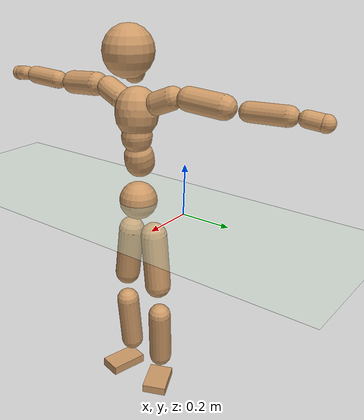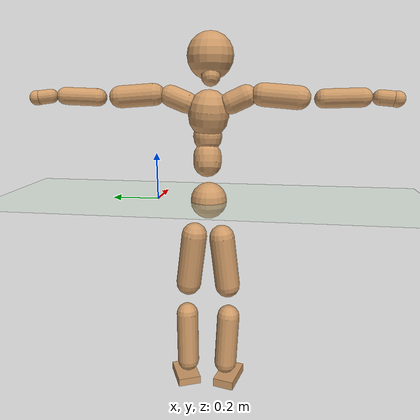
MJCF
<mujoco model="humanoid">
  <compiler coordinate="local" angle="radian"/>
  <default>
    <joint damping="0.0" armature="0.01" stiffness="0.0" limited="true"/>
    <geom conaffinity="1" condim="3" contype="7" margin="0.001" rgba="0.8 0.6 .4 1"/>
  </default>
  <asset>
    <texture type="skybox" builtin="gradient" rgb1=".4 .5 .6" rgb2="0 0 0" width="100" height="100"/>
    <texture builtin="flat" height="1278" mark="cross" markrgb="1 1 1" name="texgeom" random="0.01" rgb1="0.8 0.6 0.4" rgb2="0.8 0.6 0.4" type="cube" width="127"/>
    <texture builtin="checker" height="100" name="texplane" rgb1="0 0 0" rgb2="0.8 0.8 0.8" type="2d" width="100"/>
    <material name="MatPlane" reflectance="0.5" shininess="1" specular="1" texrepeat="60 60" texture="texplane"/>
    <material name="geom" texture="texgeom" texuniform="true"/>
  </asset>
  <worldbody>
    <light cutoff="100" diffuse="1 1 1" dir="-0 0 -1.3" directional="true" exponent="1" pos="0 0 1.3" specular=".1 .1 .1"/>
    <geom conaffinity="1" condim="3" name="floor" pos="0 0 0" rgba="0.8 0.9 0.8 1" size="100 100 .2" type="plane" material="MatPlane"/>
    <body name="Pelvis" pos="-0.0013 -0.2258 0.0005">
      <freejoint name="Pelvis"/>
      <geom type="sphere" contype="1" conaffinity="1" density="500" size="0.0784" pos="0.0000 0.0000 0.0000" name="Pelvis"/>
      <body name="L_Hip" pos="-0.0296 0.0501 -0.0766">
        <joint name="L_Hip_x" type="hinge" pos="0 0 0" axis="1 0 0" stiffness="800" damping="80" armature="0.02" range="-180.0000 180.0000"/>
        <joint name="L_Hip_y" type="hinge" pos="0 0 0" axis="0 1 0" stiffness="800" damping="80" armature="0.02" range="-180.0000 180.0000"/>
        <joint name="L_Hip_z" type="hinge" pos="0 0 0" axis="0 0 1" stiffness="800" damping="80" armature="0.02" range="-180.0000 180.0000"/>
        <geom type="capsule" contype="1" conaffinity="1" density="500" fromto="0.0018 0.0095 -0.0760 0.0071 0.0380 -0.3038" size="0.0556" name="L_Hip"/>
        <body name="L_Knee" pos="0.0089 0.0475 -0.3798">
          <joint name="L_Knee_x" type="hinge" pos="0 0 0" axis="1 0 0" stiffness="800" damping="80" armature="0.02" range="-180.0000 180.0000"/>
          <joint name="L_Knee_y" type="hinge" pos="0 0 0" axis="0 1 0" stiffness="800" damping="80" armature="0.02" range="-180.0000 180.0000"/>
          <joint name="L_Knee_z" type="hinge" pos="0 0 0" axis="0 0 1" stiffness="800" damping="80" armature="0.02" range="-180.0000 180.0000"/>
          <geom type="capsule" contype="1" conaffinity="1" density="500" fromto="-0.0063 -0.0020 -0.0764 -0.0251 -0.0080 -0.3058" size="0.0492" name="L_Knee"/>
          <body name="L_Ankle" pos="-0.0314 -0.01 -0.3822">
            <joint name="L_Ankle_x" type="hinge" pos="0 0 0" axis="1 0 0" stiffness="800" damping="80" armature="0.02" range="-180.0000 180.0000"/>
            <joint name="L_Ankle_y" type="hinge" pos="0 0 0" axis="0 1 0" stiffness="800" damping="80" armature="0.02" range="-180.0000 180.0000"/>
            <joint name="L_Ankle_z" type="hinge" pos="0 0 0" axis="0 0 1" stiffness="800" damping="80" armature="0.02" range="-180.0000 180.0000"/>
            <geom type="box" contype="1" conaffinity="1" density="500" pos="0.0546 0.0239 -0.0281" size="0.0772 0.0517 0.018" quat="0.9788 0.0000 0.0000 0.2050" name="L_Ankle"/>
            <body name="L_Toe" pos="0.1092 0.0479 -0.0563">
              <joint name="L_Toe_x" type="hinge" pos="0 0 0" axis="1 0 0" stiffness="500" damping="50" armature="0.02" range="-180.0000 180.0000"/>
              <joint name="L_Toe_y" type="hinge" pos="0 0 0" axis="0 1 0" stiffness="500" damping="50" armature="0.02" range="-180.0000 180.0000"/>
              <joint name="L_Toe_z" type="hinge" pos="0 0 0" axis="0 0 1" stiffness="500" damping="50" armature="0.02" range="-180.0000 180.0000"/>
              <geom type="box" contype="1" conaffinity="1" density="500" pos="0.0000 0.0000 0.0302" size="0.001 0.0025 0.001" quat="0.9779 0.0000 0.0000 0.2091" name="L_Toe"/>
            </body>
          </body>
        </body>
      </body>
      <body name="R_Hip" pos="-0.028 -0.0524 -0.0831">
        <joint name="R_Hip_x" type="hinge" pos="0 0 0" axis="1 0 0" stiffness="800" damping="80" armature="0.02" range="-180.0000 180.0000"/>
        <joint name="R_Hip_y" type="hinge" pos="0 0 0" axis="0 1 0" stiffness="800" damping="80" armature="0.02" range="-180.0000 180.0000"/>
        <joint name="R_Hip_z" type="hinge" pos="0 0 0" axis="0 0 1" stiffness="800" damping="80" armature="0.02" range="-180.0000 180.0000"/>
        <geom type="capsule" contype="1" conaffinity="1" density="500" fromto="-0.0006 -0.0091 -0.0740 -0.0022 -0.0364 -0.2960" size="0.0546" name="R_Hip"/>
        <body name="R_Knee" pos="-0.0028 -0.0455 -0.37">
          <joint name="R_Knee_x" type="hinge" pos="0 0 0" axis="1 0 0" stiffness="800" damping="80" armature="0.02" range="-180.0000 180.0000"/>
          <joint name="R_Knee_y" type="hinge" pos="0 0 0" axis="0 1 0" stiffness="800" damping="80" armature="0.02" range="-180.0000 180.0000"/>
          <joint name="R_Knee_z" type="hinge" pos="0 0 0" axis="0 0 1" stiffness="800" damping="80" armature="0.02" range="-180.0000 180.0000"/>
          <geom type="capsule" contype="1" conaffinity="1" density="500" fromto="-0.0059 0.0032 -0.0751 -0.0234 0.0126 -0.3004" size="0.0501" name="R_Knee"/>
          <body name="R_Ankle" pos="-0.0293 0.0158 -0.3755">
            <joint name="R_Ankle_x" type="hinge" pos="0 0 0" axis="1 0 0" stiffness="800" damping="80" armature="0.02" range="-180.0000 180.0000"/>
            <joint name="R_Ankle_y" type="hinge" pos="0 0 0" axis="0 1 0" stiffness="800" damping="80" armature="0.02" range="-180.0000 180.0000"/>
            <joint name="R_Ankle_z" type="hinge" pos="0 0 0" axis="0 0 1" stiffness="800" damping="80" armature="0.02" range="-180.0000 180.0000"/>
            <geom type="box" contype="1" conaffinity="1" density="500" pos="0.0592 -0.0143 -0.0294" size="0.0831 0.0472 0.0198" quat="0.9930 0.0000 0.0000 -0.1184" name="R_Ankle"/>
            <body name="R_Toe" pos="0.1184 -0.0287 -0.0588">
              <joint name="R_Toe_x" type="hinge" pos="0 0 0" axis="1 0 0" stiffness="500" damping="50" armature="0.02" range="-180.0000 180.0000"/>
              <joint name="R_Toe_y" type="hinge" pos="0 0 0" axis="0 1 0" stiffness="500" damping="50" armature="0.02" range="-180.0000 180.0000"/>
              <joint name="R_Toe_z" type="hinge" pos="0 0 0" axis="0 0 1" stiffness="500" damping="50" armature="0.02" range="-180.0000 180.0000"/>
              <geom type="box" contype="1" conaffinity="1" density="500" pos="0.0000 0.0000 0.0320" size="0.0009 0.0023 0.0011" quat="0.9941 0.0000 0.0000 -0.1087" name="R_Toe"/>
            </body>
          </body>
        </body>
      </body>
      <body name="Torso" pos="-0.0173 0.0036 0.1087">
        <joint name="Torso_x" type="hinge" pos="0 0 0" axis="1 0 0" stiffness="1000" damping="100" armature="0.02" range="-180.0000 180.0000"/>
        <joint name="Torso_y" type="hinge" pos="0 0 0" axis="0 1 0" stiffness="1000" damping="100" armature="0.02" range="-180.0000 180.0000"/>
        <joint name="Torso_z" type="hinge" pos="0 0 0" axis="0 0 1" stiffness="1000" damping="100" armature="0.02" range="-180.0000 180.0000"/>
        <geom type="capsule" contype="1" conaffinity="1" density="500" fromto="0.0197 0.0024 0.0826 0.0131 0.0016 0.0551" size="0.0598" name="Torso"/>
        <body name="Spine" pos="0.0328 0.0041 0.1376">
          <joint name="Spine_x" type="hinge" pos="0 0 0" axis="1 0 0" stiffness="1000" damping="100" armature="0.02" range="-180.0000 180.0000"/>
          <joint name="Spine_y" type="hinge" pos="0 0 0" axis="0 1 0" stiffness="1000" damping="100" armature="0.02" range="-180.0000 180.0000"/>
          <joint name="Spine_z" type="hinge" pos="0 0 0" axis="0 0 1" stiffness="1000" damping="100" armature="0.02" range="-180.0000 180.0000"/>
          <geom type="capsule" contype="1" conaffinity="1" density="500" fromto="0.0007 -0.0009 0.0331 0.0005 -0.0006 0.0221" size="0.0607" name="Spine"/>
          <body name="Chest" pos="0.0012 -0.0014 0.0551">
            <joint name="Chest_x" type="hinge" pos="0 0 0" axis="1 0 0" stiffness="1000" damping="100" armature="0.02" range="-180.0000 180.0000"/>
            <joint name="Chest_y" type="hinge" pos="0 0 0" axis="0 1 0" stiffness="1000" damping="100" armature="0.02" range="-180.0000 180.0000"/>
            <joint name="Chest_z" type="hinge" pos="0 0 0" axis="0 0 1" stiffness="1000" damping="100" armature="0.02" range="-180.0000 180.0000"/>
            <geom type="capsule" contype="1" conaffinity="1" density="500" fromto="-0.0092 -0.0054 0.0782 -0.0061 -0.0036 0.0521" size="0.0846" name="Chest"/>
            <body name="Neck" pos="-0.0147 -0.0138 0.1919">
              <joint name="Neck_x" type="hinge" pos="0 0 0" axis="1 0 0" stiffness="500" damping="50" armature="0.02" range="-180.0000 180.0000"/>
              <joint name="Neck_y" type="hinge" pos="0 0 0" axis="0 1 0" stiffness="500" damping="50" armature="0.02" range="-180.0000 180.0000"/>
              <joint name="Neck_z" type="hinge" pos="0 0 0" axis="0 0 1" stiffness="500" damping="50" armature="0.02" range="-180.0000 180.0000"/>
              <geom type="capsule" contype="1" conaffinity="1" density="500" fromto="0.0107 0.0018 0.0205 0.0426 0.0074 0.0819" size="0.0399" name="Neck"/>
              <body name="Head" pos="0.0533 0.0092 0.1023">
                <joint name="Head_x" type="hinge" pos="0 0 0" axis="1 0 0" stiffness="500" damping="50" armature="0.02" range="-180.0000 180.0000"/>
                <joint name="Head_y" type="hinge" pos="0 0 0" axis="0 1 0" stiffness="500" damping="50" armature="0.02" range="-180.0000 180.0000"/>
                <joint name="Head_z" type="hinge" pos="0 0 0" axis="0 0 1" stiffness="500" damping="50" armature="0.02" range="-180.0000 180.0000"/>
                <geom type="sphere" contype="1" conaffinity="1" density="500" size="0.0976" pos="0.0000 0.0000 0.0000" name="Head"/>
              </body>
            </body>
            <body name="L_Thorax" pos="-0.013 0.0632 0.0996">
              <joint name="L_Thorax_x" type="hinge" pos="0 0 0" axis="1 0 0" stiffness="500" damping="50" armature="0.02" range="-180.0000 180.0000"/>
              <joint name="L_Thorax_y" type="hinge" pos="0 0 0" axis="0 1 0" stiffness="500" damping="50" armature="0.02" range="-180.0000 180.0000"/>
              <joint name="L_Thorax_z" type="hinge" pos="0 0 0" axis="0 0 1" stiffness="500" damping="50" armature="0.02" range="-180.0000 180.0000"/>
              <geom type="capsule" contype="1" conaffinity="1" density="500" fromto="-0.0024 0.0218 0.0090 -0.0098 0.0871 0.0360" size="0.0444" name="L_Thorax"/>
              <body name="L_Shoulder" pos="-0.0122 0.1089 0.045">
                <joint name="L_Shoulder_x" type="hinge" pos="0 0 0" axis="1 0 0" stiffness="500" damping="50" armature="0.02" range="-720.0000 720.0000"/>
                <joint name="L_Shoulder_y" type="hinge" pos="0 0 0" axis="0 1 0" stiffness="500" damping="50" armature="0.02" range="-720.0000 720.0000"/>
                <joint name="L_Shoulder_z" type="hinge" pos="0 0 0" axis="0 0 1" stiffness="500" damping="50" armature="0.02" range="-720.0000 720.0000"/>
                <geom type="capsule" contype="1" conaffinity="1" density="500" fromto="-0.0024 0.0475 -0.0033 -0.0095 0.1899 -0.0134" size="0.0453" name="L_Shoulder"/>
                <body name="L_Elbow" pos="-0.0119 0.2373 -0.0167">
                  <joint name="L_Elbow_x" type="hinge" pos="0 0 0" axis="1 0 0" stiffness="500" damping="50" armature="0.02" range="-720.0000 720.0000"/>
                  <joint name="L_Elbow_y" type="hinge" pos="0 0 0" axis="0 1 0" stiffness="500" damping="50" armature="0.02" range="-720.0000 720.0000"/>
                  <joint name="L_Elbow_z" type="hinge" pos="0 0 0" axis="0 0 1" stiffness="500" damping="50" armature="0.02" range="-720.0000 720.0000"/>
                  <geom type="capsule" contype="1" conaffinity="1" density="500" fromto="-0.0021 0.0465 0.0017 -0.0084 0.1861 0.0068" size="0.036" name="L_Elbow"/>
                  <body name="L_Wrist" pos="-0.0105 0.2326 0.0085">
                    <joint name="L_Wrist_x" type="hinge" pos="0 0 0" axis="1 0 0" stiffness="300" damping="30" armature="0.02" range="-180.0000 180.0000"/>
                    <joint name="L_Wrist_y" type="hinge" pos="0 0 0" axis="0 1 0" stiffness="300" damping="30" armature="0.02" range="-180.0000 180.0000"/>
                    <joint name="L_Wrist_z" type="hinge" pos="0 0 0" axis="0 0 1" stiffness="300" damping="30" armature="0.02" range="-180.0000 180.0000"/>
                    <geom type="capsule" contype="1" conaffinity="1" density="500" fromto="-0.0027 0.0149 -0.0019 -0.0107 0.0596 -0.0075" size="0.0293" name="L_Wrist"/>
                    <body name="L_Hand" pos="-0.0134 0.0745 -0.0094">
                      <joint name="L_Hand_x" type="hinge" pos="0 0 0" axis="1 0 0" stiffness="300" damping="30" armature="0.02" range="-180.0000 180.0000"/>
                      <joint name="L_Hand_y" type="hinge" pos="0 0 0" axis="0 1 0" stiffness="300" damping="30" armature="0.02" range="-180.0000 180.0000"/>
                      <joint name="L_Hand_z" type="hinge" pos="0 0 0" axis="0 0 1" stiffness="300" damping="30" armature="0.02" range="-180.0000 180.0000"/>
                      <geom type="sphere" contype="1" conaffinity="1" density="500" size="0.0307" pos="0.0000 0.0000 0.0000" name="L_Hand"/>
                    </body>
                  </body>
                </body>
              </body>
            </body>
            <body name="R_Thorax" pos="-0.018 -0.0766 0.0993">
              <joint name="R_Thorax_x" type="hinge" pos="0 0 0" axis="1 0 0" stiffness="500" damping="50" armature="0.02" range="-180.0000 180.0000"/>
              <joint name="R_Thorax_y" type="hinge" pos="0 0 0" axis="0 1 0" stiffness="500" damping="50" armature="0.02" range="-180.0000 180.0000"/>
              <joint name="R_Thorax_z" type="hinge" pos="0 0 0" axis="0 0 1" stiffness="500" damping="50" armature="0.02" range="-180.0000 180.0000"/>
              <geom type="capsule" contype="1" conaffinity="1" density="500" fromto="-0.0007 -0.0204 0.0092 -0.0028 -0.0814 0.0368" size="0.0453" name="R_Thorax"/>
              <body name="R_Shoulder" pos="-0.0036 -0.1018 0.046">
                <joint name="R_Shoulder_x" type="hinge" pos="0 0 0" axis="1 0 0" stiffness="500" damping="50" armature="0.02" range="-720.0000 720.0000"/>
                <joint name="R_Shoulder_y" type="hinge" pos="0 0 0" axis="0 1 0" stiffness="500" damping="50" armature="0.02" range="-720.0000 720.0000"/>
                <joint name="R_Shoulder_z" type="hinge" pos="0 0 0" axis="0 0 1" stiffness="500" damping="50" armature="0.02" range="-720.0000 720.0000"/>
                <geom type="capsule" contype="1" conaffinity="1" density="500" fromto="-0.0040 -0.0473 -0.0039 -0.0161 -0.1890 -0.0155" size="0.0471" name="R_Shoulder"/>
                <body name="R_Elbow" pos="-0.0202 -0.2363 -0.0194">
                  <joint name="R_Elbow_x" type="hinge" pos="0 0 0" axis="1 0 0" stiffness="500" damping="50" armature="0.02" range="-720.0000 720.0000"/>
                  <joint name="R_Elbow_y" type="hinge" pos="0 0 0" axis="0 1 0" stiffness="500" damping="50" armature="0.02" range="-720.0000 720.0000"/>
                  <joint name="R_Elbow_z" type="hinge" pos="0 0 0" axis="0 0 1" stiffness="500" damping="50" armature="0.02" range="-720.0000 720.0000"/>
                  <geom type="capsule" contype="1" conaffinity="1" density="500" fromto="-0.0012 -0.0484 0.0015 -0.0047 -0.1937 0.0060" size="0.0371" name="R_Elbow"/>
                  <body name="R_Wrist" pos="-0.0059 -0.2422 0.0075">
                    <joint name="R_Wrist_x" type="hinge" pos="0 0 0" axis="1 0 0" stiffness="300" damping="30" armature="0.02" range="-180.0000 180.0000"/>
                    <joint name="R_Wrist_y" type="hinge" pos="0 0 0" axis="0 1 0" stiffness="300" damping="30" armature="0.02" range="-180.0000 180.0000"/>
                    <joint name="R_Wrist_z" type="hinge" pos="0 0 0" axis="0 0 1" stiffness="300" damping="30" armature="0.02" range="-180.0000 180.0000"/>
                    <geom type="capsule" contype="1" conaffinity="1" density="500" fromto="-0.0018 -0.0153 -0.0015 -0.0072 -0.0614 -0.0058" size="0.0299" name="R_Wrist"/>
                    <body name="R_Hand" pos="-0.009 -0.0767 -0.0073">
                      <joint name="R_Hand_x" type="hinge" pos="0 0 0" axis="1 0 0" stiffness="300" damping="30" armature="0.02" range="-180.0000 180.0000"/>
                      <joint name="R_Hand_y" type="hinge" pos="0 0 0" axis="0 1 0" stiffness="300" damping="30" armature="0.02" range="-180.0000 180.0000"/>
                      <joint name="R_Hand_z" type="hinge" pos="0 0 0" axis="0 0 1" stiffness="300" damping="30" armature="0.02" range="-180.0000 180.0000"/>
                      <geom type="sphere" contype="1" conaffinity="1" density="500" size="0.0312" pos="0.0000 0.0000 0.0000" name="R_Hand"/>
                    </body>
                  </body>
                </body>
              </body>
            </body>
          </body>
        </body>
      </body>
    </body>
  </worldbody>
  <actuator>
    <motor name="L_Hip_x" joint="L_Hip_x" gear="500"/>
    <motor name="L_Hip_y" joint="L_Hip_y" gear="500"/>
    <motor name="L_Hip_z" joint="L_Hip_z" gear="500"/>
    <motor name="L_Knee_x" joint="L_Knee_x" gear="500"/>
    <motor name="L_Knee_y" joint="L_Knee_y" gear="500"/>
    <motor name="L_Knee_z" joint="L_Knee_z" gear="500"/>
    <motor name="L_Ankle_x" joint="L_Ankle_x" gear="500"/>
    <motor name="L_Ankle_y" joint="L_Ankle_y" gear="500"/>
    <motor name="L_Ankle_z" joint="L_Ankle_z" gear="500"/>
    <motor name="L_Toe_x" joint="L_Toe_x" gear="500"/>
    <motor name="L_Toe_y" joint="L_Toe_y" gear="500"/>
    <motor name="L_Toe_z" joint="L_Toe_z" gear="500"/>
    <motor name="R_Hip_x" joint="R_Hip_x" gear="500"/>
    <motor name="R_Hip_y" joint="R_Hip_y" gear="500"/>
    <motor name="R_Hip_z" joint="R_Hip_z" gear="500"/>
    <motor name="R_Knee_x" joint="R_Knee_x" gear="500"/>
    <motor name="R_Knee_y" joint="R_Knee_y" gear="500"/>
    <motor name="R_Knee_z" joint="R_Knee_z" gear="500"/>
    <motor name="R_Ankle_x" joint="R_Ankle_x" gear="500"/>
    <motor name="R_Ankle_y" joint="R_Ankle_y" gear="500"/>
    <motor name="R_Ankle_z" joint="R_Ankle_z" gear="500"/>
    <motor name="R_Toe_x" joint="R_Toe_x" gear="500"/>
    <motor name="R_Toe_y" joint="R_Toe_y" gear="500"/>
    <motor name="R_Toe_z" joint="R_Toe_z" gear="500"/>
    <motor name="Torso_x" joint="Torso_x" gear="500"/>
    <motor name="Torso_y" joint="Torso_y" gear="500"/>
    <motor name="Torso_z" joint="Torso_z" gear="500"/>
    <motor name="Spine_x" joint="Spine_x" gear="500"/>
    <motor name="Spine_y" joint="Spine_y" gear="500"/>
    <motor name="Spine_z" joint="Spine_z" gear="500"/>
    <motor name="Chest_x" joint="Chest_x" gear="500"/>
    <motor name="Chest_y" joint="Chest_y" gear="500"/>
    <motor name="Chest_z" joint="Chest_z" gear="500"/>
    <motor name="Neck_x" joint="Neck_x" gear="500"/>
    <motor name="Neck_y" joint="Neck_y" gear="500"/>
    <motor name="Neck_z" joint="Neck_z" gear="500"/>
    <motor name="Head_x" joint="Head_x" gear="500"/>
    <motor name="Head_y" joint="Head_y" gear="500"/>
    <motor name="Head_z" joint="Head_z" gear="500"/>
    <motor name="L_Thorax_x" joint="L_Thorax_x" gear="500"/>
    <motor name="L_Thorax_y" joint="L_Thorax_y" gear="500"/>
    <motor name="L_Thorax_z" joint="L_Thorax_z" gear="500"/>
    <motor name="L_Shoulder_x" joint="L_Shoulder_x" gear="500"/>
    <motor name="L_Shoulder_y" joint="L_Shoulder_y" gear="500"/>
    <motor name="L_Shoulder_z" joint="L_Shoulder_z" gear="500"/>
    <motor name="L_Elbow_x" joint="L_Elbow_x" gear="500"/>
    <motor name="L_Elbow_y" joint="L_Elbow_y" gear="500"/>
    <motor name="L_Elbow_z" joint="L_Elbow_z" gear="500"/>
    <motor name="L_Wrist_x" joint="L_Wrist_x" gear="500"/>
    <motor name="L_Wrist_y" joint="L_Wrist_y" gear="500"/>
    <motor name="L_Wrist_z" joint="L_Wrist_z" gear="500"/>
    <motor name="L_Hand_x" joint="L_Hand_x" gear="500"/>
    <motor name="L_Hand_y" joint="L_Hand_y" gear="500"/>
    <motor name="L_Hand_z" joint="L_Hand_z" gear="500"/>
    <motor name="R_Thorax_x" joint="R_Thorax_x" gear="500"/>
    <motor name="R_Thorax_y" joint="R_Thorax_y" gear="500"/>
    <motor name="R_Thorax_z" joint="R_Thorax_z" gear="500"/>
    <motor name="R_Shoulder_x" joint="R_Shoulder_x" gear="500"/>
    <motor name="R_Shoulder_y" joint="R_Shoulder_y" gear="500"/>
    <motor name="R_Shoulder_z" joint="R_Shoulder_z" gear="500"/>
    <motor name="R_Elbow_x" joint="R_Elbow_x" gear="500"/>
    <motor name="R_Elbow_y" joint="R_Elbow_y" gear="500"/>
    <motor name="R_Elbow_z" joint="R_Elbow_z" gear="500"/>
    <motor name="R_Wrist_x" joint="R_Wrist_x" gear="500"/>
    <motor name="R_Wrist_y" joint="R_Wrist_y" gear="500"/>
    <motor name="R_Wrist_z" joint="R_Wrist_z" gear="500"/>
    <motor name="R_Hand_x" joint="R_Hand_x" gear="500"/>
    <motor name="R_Hand_y" joint="R_Hand_y" gear="500"/>
    <motor name="R_Hand_z" joint="R_Hand_z" gear="500"/>
  </actuator>
  <contact>
    <exclude body1="Torso" body2="Chest"/>
    <exclude body1="Head" body2="Chest"/>
    <exclude body1="R_Knee" body2="R_Toe"/>
    <exclude body1="R_Knee" body2="L_Ankle"/>
    <exclude body1="R_Knee" body2="L_Toe"/>
    <exclude body1="L_Knee" body2="L_Toe"/>
    <exclude body1="L_Knee" body2="R_Ankle"/>
    <exclude body1="L_Knee" body2="R_Toe"/>
    <exclude body1="L_Shoulder" body2="Chest"/>
    <exclude body1="R_Shoulder" body2="Chest"/>
  </contact>
  <sensor/>
  <size njmax="700" nconmax="700"/>
</mujoco>
